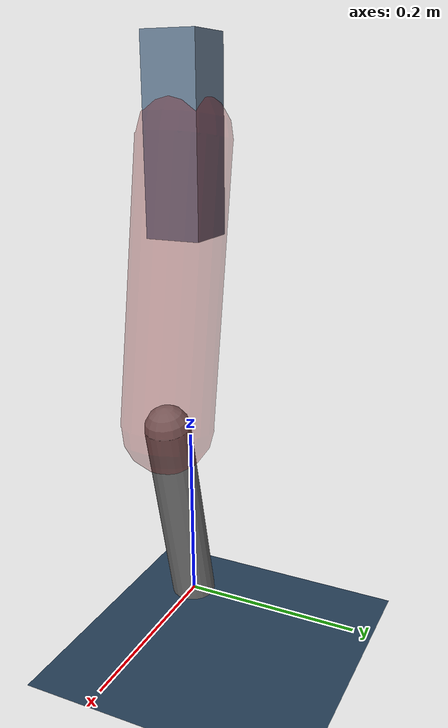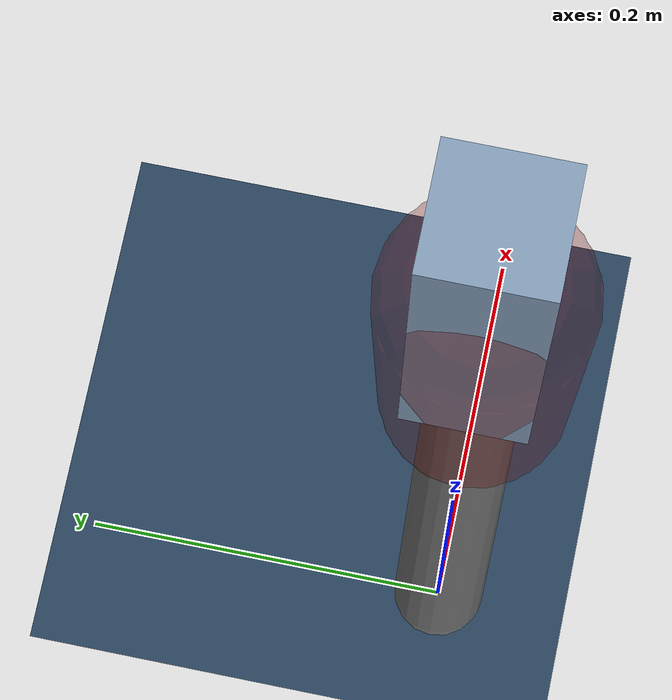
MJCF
<mujoco model="Hopper2D">
	<compiler inertiafromgeom="true" angle="radian" />
	<option timestep="0.001" integrator="implicit" cone="elliptic" solver="Newton" tolerance="1e-10" />

	<default>
		<geom contype="1" conaffinity="1" condim="3" friction="2 0.005 0.0001" solref="0.005 1" />
		<joint limited="true" damping="0.1" />
	</default>

	<asset>
		<texture name="skybox" type="skybox" builtin="gradient" rgb1=".4 .6 .8" rgb2="0 0 0" width="800" height="800" />
		<texture name="grid" type="2d" builtin="checker" rgb1=".1 .2 .3" rgb2=".2 .3 .4" width="300" height="300" mark="edge" markrgb=".2 .3 .4" />
		<material name="ground" texture="grid" texrepeat="1 1" texuniform="true" reflectance="0.1" />
		<material name="leg" rgba="0.5 0.6 0.7 1" />
	</asset>

	<worldbody>

		<geom name="floor" type="plane" size="5 5 0.25" material="ground" />

		<light directional="false" diffuse="0.8 0.8 0.8" specular="0.3 0.3 0.3" pos="0 0 2" dir="0 0 -1" />
		<light mode="targetbodycom" target="base" directional="false" diffuse="0.8 0.8 0.8" specular="0.3 0.3 0.3" pos="0 0 2" dir="0 0 -1" />

		<camera name="fixed" pos="0 -2 1" xyaxes="1 0 0 0 0 1" />
		<camera name="tracking" mode="trackcom" pos="0 -3 1" />

		<body name="root" pos="0 0 0.5260651029197889">
			<joint name="slide_x" type="slide" axis="1 0 0" range="-100 100" />
			<joint name="slide_z" type="slide" axis="0 0 1" range="0 10" />

			<body name="base" pos="0 0 0">
				<geom name="torso" type="box" size="0.03 0.03 0.1" mass="3.213" material="leg" />

				<body name="link1" pos="0 0 0" euler="0 1.400516637909234 0">
					<joint type="hinge" axis="0 -1 0" pos="0 0 0" name="hinge1" limited="true" range="-3.14 3.14" stiffness="0" damping="0.1" />
					<geom name="thigh" type="capsule" fromto="0 0 0 0.30159992208971453 0 0" size="0.05" rgba="0.5 0 0 0.3" mass="0.9930197896422293" />

					<body name="link2" pos="0.30159992208971453 0 0" euler="0 0.3900230310826543 0">
						<joint type="hinge" axis="0 -1 0" pos="0 0 0" name="hinge2" limited="true" range="-3.14 3.14" stiffness="0" damping="0.1" />
						<geom name="shank" type="capsule" fromto="0 0 0 0.23446518083007445 0 0" size="0.025" mass="0.42967214466405956" />

					</body>
				</body>
			</body>
		</body>
	</worldbody>

	<actuator>
		<motor name="torque1" joint="hinge1" ctrlrange="-55.42559231755328 55.42559231755328" ctrllimited="true" gear="1" />
		<motor name="torque2" joint="hinge2" ctrlrange="-222.5788759802308 222.5788759802308" ctrllimited="true" gear="1" />
	</actuator>
</mujoco>
